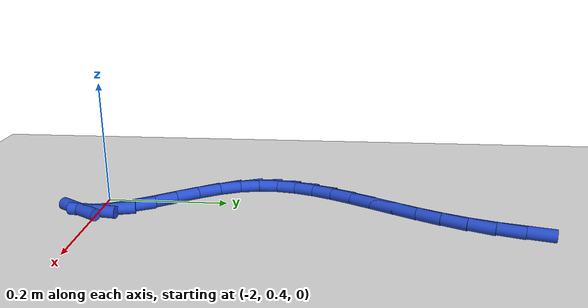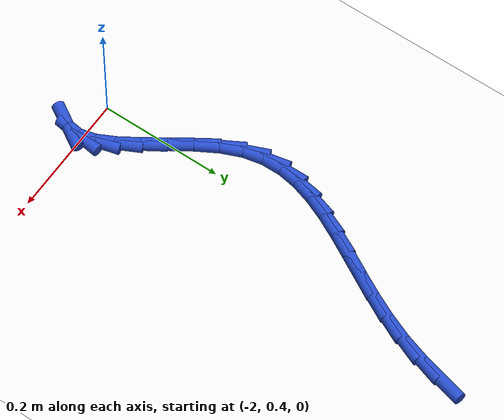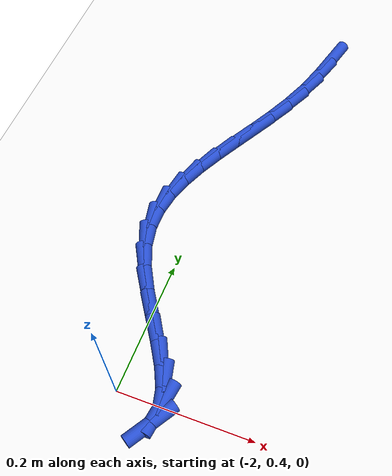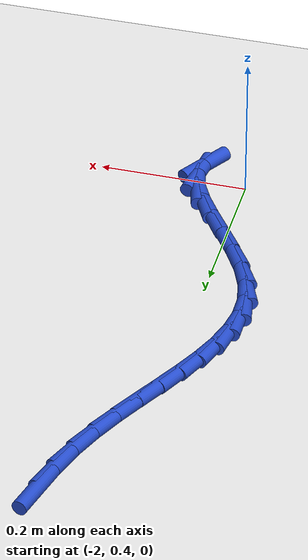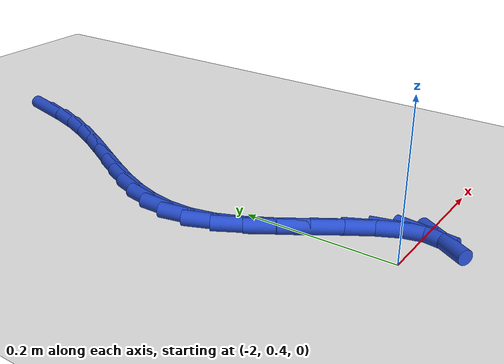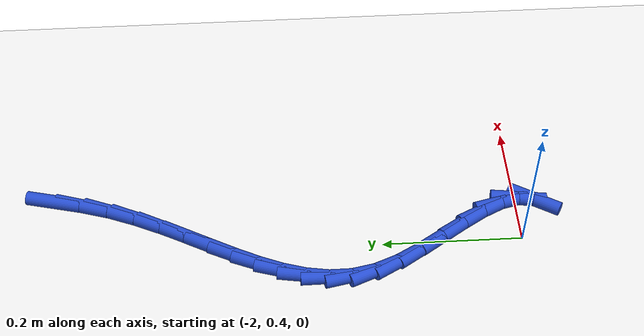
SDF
<sdf version="1.6">
 <world name="default">
  <model name="ground_plane">
   <static>1</static>
   <link name="link">
    <collision name="collision">
     <geometry><plane><normal>0 0 1</normal><size>100 100</size></plane></geometry>
     <surface><friction><ode><mu>100</mu><mu2>50</mu2></ode></friction></surface>
    </collision>
    <visual name="visual">
     <cast_shadows>0</cast_shadows>
     <geometry><plane><normal>0 0 1</normal><size>100 100</size></plane></geometry>
     <material>
      <script><uri>file://media/materials/scripts/gazebo.material</uri><name>Gazebo/WhiteGlow</name></script>
     </material>
    </visual>
   </link>
  </model>
  <model name="line">
   <link name="link_81">
    <pose>-1.900393486581101 1.0660492257197332 0.01 0 1.57 1.3218783087110892</pose>
    <collision name="collision">
     <geometry><cylinder><radius>0.01</radius><length>0.08</length></cylinder></geometry>
    </collision>
    <visual name="visual">
     <material>
      <script><name>Gazebo/Blue</name><uri>file://media/materials/scripts/gazebo.material</uri></script>
     </material>
     <geometry><cylinder><radius>0.01</radius><length>0.08</length></cylinder></geometry>
    </visual>
   </link>
   <link name="link_82">
    <pose>-1.910838925576385 1.024956142556302 0.01 0 1.57 1.2593751050893758</pose>
    <collision name="collision">
     <geometry><cylinder><radius>0.01</radius><length>0.08</length></cylinder></geometry>
    </collision>
    <visual name="visual">
     <material>
      <script><name>Gazebo/Blue</name><uri>file://media/materials/scripts/gazebo.material</uri></script>
     </material>
     <geometry><cylinder><radius>0.01</radius><length>0.08</length></cylinder></geometry>
    </visual>
   </link>
   <link name="link_83">
    <pose>-1.923765919452173 0.9847971375282583 0.01 0 1.57 1.1792049419602633</pose>
    <collision name="collision">
     <geometry><cylinder><radius>0.01</radius><length>0.08</length></cylinder></geometry>
    </collision>
    <visual name="visual">
     <material>
      <script><name>Gazebo/Blue</name><uri>file://media/materials/scripts/gazebo.material</uri></script>
     </material>
     <geometry><cylinder><radius>0.01</radius><length>0.08</length></cylinder></geometry>
    </visual>
   </link>
   <link name="link_84">
    <pose>-1.9395824567280096 0.9464926843374095 0.01 0 1.57 1.1173850934279785</pose>
    <collision name="collision">
     <geometry><cylinder><radius>0.01</radius><length>0.08</length></cylinder></geometry>
    </collision>
    <visual name="visual">
     <material>
      <script><name>Gazebo/Blue</name><uri>file://media/materials/scripts/gazebo.material</uri></script>
     </material>
     <geometry><cylinder><radius>0.01</radius><length>0.08</length></cylinder></geometry>
    </visual>
   </link>
   <link name="link_85">
    <pose>-1.9574265873750212 0.9098720051963848 0.01 0 1.57 1.0774778064119195</pose>
    <collision name="collision">
     <geometry><cylinder><radius>0.01</radius><length>0.08</length></cylinder></geometry>
    </collision>
    <visual name="visual">
     <material>
      <script><name>Gazebo/Blue</name><uri>file://media/materials/scripts/gazebo.material</uri></script>
     </material>
     <geometry><cylinder><radius>0.01</radius><length>0.08</length></cylinder></geometry>
    </visual>
   </link>
   <link name="link_86">
    <pose>-1.9763448197782505 0.8746856611162411 0.01 0 1.57 1.060352075614533</pose>
    <collision name="collision">
     <geometry><cylinder><radius>0.01</radius><length>0.08</length></cylinder></geometry>
    </collision>
    <visual name="visual">
     <material>
      <script><name>Gazebo/Blue</name><uri>file://media/materials/scripts/gazebo.material</uri></script>
     </material>
     <geometry><cylinder><radius>0.01</radius><length>0.08</length></cylinder></geometry>
    </visual>
   </link>
   <link name="link_87">
    <pose>-1.9953836623227366 0.8406842131080366 0.01 0 1.57 1.0674966071848522</pose>
    <collision name="collision">
     <geometry><cylinder><radius>0.01</radius><length>0.08</length></cylinder></geometry>
    </collision>
    <visual name="visual">
     <material>
      <script><name>Gazebo/Blue</name><uri>file://media/materials/scripts/gazebo.material</uri></script>
     </material>
     <geometry><cylinder><radius>0.01</radius><length>0.08</length></cylinder></geometry>
    </visual>
   </link>
   <link name="link_88">
    <pose>-2.0135896233935218 0.8076182221828299 0.01 0 1.57 1.101492141378941</pose>
    <collision name="collision">
     <geometry><cylinder><radius>0.01</radius><length>0.08</length></cylinder></geometry>
    </collision>
    <visual name="visual">
     <material>
      <script><name>Gazebo/Blue</name><uri>file://media/materials/scripts/gazebo.material</uri></script>
     </material>
     <geometry><cylinder><radius>0.01</radius><length>0.08</length></cylinder></geometry>
    </visual>
   </link>
   <link name="link_89">
    <pose>-2.0300092113756487 0.775238249351678 0.01 0 1.57 1.1661770519571342</pose>
    <collision name="collision">
     <geometry><cylinder><radius>0.01</radius><length>0.08</length></cylinder></geometry>
    </collision>
    <visual name="visual">
     <material>
      <script><name>Gazebo/Blue</name><uri>file://media/materials/scripts/gazebo.material</uri></script>
     </material>
     <geometry><cylinder><radius>0.01</radius><length>0.08</length></cylinder></geometry>
    </visual>
   </link>
   <link name="link_90">
    <pose>-2.043688934654158 0.7432948556256395 0.01 0 1.57 1.266118366930784</pose>
    <collision name="collision">
     <geometry><cylinder><radius>0.01</radius><length>0.08</length></cylinder></geometry>
    </collision>
    <visual name="visual">
     <material>
      <script><name>Gazebo/Blue</name><uri>file://media/materials/scripts/gazebo.material</uri></script>
     </material>
     <geometry><cylinder><radius>0.01</radius><length>0.08</length></cylinder></geometry>
    </visual>
   </link>
   <link name="link_91">
    <pose>-2.0536753016140907 0.7115386020157721 0.01 0 1.57 1.4045339645055368</pose>
    <collision name="collision">
     <geometry><cylinder><radius>0.01</radius><length>0.08</length></cylinder></geometry>
    </collision>
    <visual name="visual">
     <material>
      <script><name>Gazebo/Blue</name><uri>file://media/materials/scripts/gazebo.material</uri></script>
     </material>
     <geometry><cylinder><radius>0.01</radius><length>0.08</length></cylinder></geometry>
    </visual>
   </link>
   <link name="link_92">
    <pose>-2.0590148206404892 0.6797200495331343 0.01 0 1.57 -1.5626789151381304</pose>
    <collision name="collision">
     <geometry><cylinder><radius>0.01</radius><length>0.08</length></cylinder></geometry>
    </collision>
    <visual name="visual">
     <material>
      <script><name>Gazebo/Blue</name><uri>file://media/materials/scripts/gazebo.material</uri></script>
     </material>
     <geometry><cylinder><radius>0.01</radius><length>0.08</length></cylinder></geometry>
    </visual>
   </link>
   <link name="link_93">
    <pose>-2.0587540001183933 0.6475897591887835 0.01 0 1.57 -1.3652857450930833</pose>
    <collision name="collision">
     <geometry><cylinder><radius>0.01</radius><length>0.08</length></cylinder></geometry>
    </collision>
    <visual name="visual">
     <material>
      <script><name>Gazebo/Blue</name><uri>file://media/materials/scripts/gazebo.material</uri></script>
     </material>
     <geometry><cylinder><radius>0.01</radius><length>0.08</length></cylinder></geometry>
    </visual>
   </link>
   <link name="link_94">
    <pose>-2.0519393484328448 0.614898291993778 0.01 0 1.57 -1.175092285447107</pose>
    <collision name="collision">
     <geometry><cylinder><radius>0.01</radius><length>0.08</length></cylinder></geometry>
    </collision>
    <visual name="visual">
     <material>
      <script><name>Gazebo/Blue</name><uri>file://media/materials/scripts/gazebo.material</uri></script>
     </material>
     <geometry><cylinder><radius>0.01</radius><length>0.08</length></cylinder></geometry>
    </visual>
   </link>
   <link name="link_95">
    <pose>-2.037981253968023 0.5814848172712699 0.01 0 1.57 -1.0496214207186552</pose>
    <collision name="collision">
     <geometry><cylinder><radius>0.01</radius><length>0.08</length></cylinder></geometry>
    </collision>
    <visual name="visual">
     <material>
      <script><name>Gazebo/Blue</name><uri>file://media/materials/scripts/gazebo.material</uri></script>
     </material>
     <geometry><cylinder><radius>0.01</radius><length>0.08</length></cylinder></geometry>
    </visual>
   </link>
   <link name="link_96">
    <pose>-2.018616144277766 0.5477549174618606 0.01 0 1.57 -0.9860833980995647</pose>
    <collision name="collision">
     <geometry><cylinder><radius>0.01</radius><length>0.08</length></cylinder></geometry>
    </collision>
    <visual name="visual">
     <material>
      <script><name>Gazebo/Blue</name><uri>file://media/materials/scripts/gazebo.material</uri></script>
     </material>
     <geometry><cylinder><radius>0.01</radius><length>0.08</length></cylinder></geometry>
    </visual>
   </link>
   <link name="link_97">
    <pose>-1.996496070969169 0.5143371383513871 0.01 0 1.57 -0.9707467989995675</pose>
    <collision name="collision">
     <geometry><cylinder><radius>0.01</radius><length>0.08</length></cylinder></geometry>
    </collision>
    <visual name="visual">
     <material>
      <script><name>Gazebo/Blue</name><uri>file://media/materials/scripts/gazebo.material</uri></script>
     </material>
     <geometry><cylinder><radius>0.01</radius><length>0.08</length></cylinder></geometry>
    </visual>
   </link>
   <link name="link_98">
    <pose>-1.9742752883288524 0.4818605620995331 0.01 0 1.57 -1.0040763716793484</pose>
    <collision name="collision">
     <geometry><cylinder><radius>0.01</radius><length>0.08</length></cylinder></geometry>
    </collision>
    <visual name="visual">
     <material>
      <script><name>Gazebo/Blue</name><uri>file://media/materials/scripts/gazebo.material</uri></script>
     </material>
     <geometry><cylinder><radius>0.01</radius><length>0.08</length></cylinder></geometry>
    </visual>
   </link>
   <link name="link_99">
    <pose>-1.9546080506434393 0.45095427086598283 0.01 0 1.57 -1.1041997470712976</pose>
    <collision name="collision">
     <geometry><cylinder><radius>0.01</radius><length>0.08</length></cylinder></geometry>
    </collision>
    <visual name="visual">
     <material>
      <script><name>Gazebo/Blue</name><uri>file://media/materials/scripts/gazebo.material</uri></script>
     </material>
     <geometry><cylinder><radius>0.01</radius><length>0.08</length></cylinder></geometry>
    </visual>
   </link>
   <link name="link_100">
    <pose>-1.9401486121995515 0.42224734681042 0.01 0 1.57 -1.3211635936922108</pose>
    <collision name="collision">
     <geometry><cylinder><radius>0.01</radius><length>0.08</length></cylinder></geometry>
    </collision>
    <visual name="visual">
     <material>
      <script><name>Gazebo/Blue</name><uri>file://media/materials/scripts/gazebo.material</uri></script>
     </material>
     <geometry><cylinder><radius>0.01</radius><length>0.08</length></cylinder></geometry>
    </visual>
   </link>
   <link name="link_101">
    <pose>-1.933550848740114 0.3963687660289458 0.01 0 1.57 1.4339145344468494</pose>
    <collision name="collision">
     <geometry><cylinder><radius>0.01</radius><length>0.08</length></cylinder></geometry>
    </collision>
    <visual name="visual">
     <material>
      <script><name>Gazebo/Blue</name><uri>file://media/materials/scripts/gazebo.material</uri></script>
     </material>
     <geometry><cylinder><radius>0.01</radius><length>0.08</length></cylinder></geometry>
    </visual>
   </link>
   <link name="link_102">
    <pose>-1.9366700447664384 0.3737237485517861 0.01 0 1.57 1.016062376305988</pose>
    <collision name="collision">
     <geometry><cylinder><radius>0.01</radius><length>0.08</length></cylinder></geometry>
    </collision>
    <visual name="visual">
     <material>
      <script><name>Gazebo/Blue</name><uri>file://media/materials/scripts/gazebo.material</uri></script>
     </material>
     <geometry><cylinder><radius>0.01</radius><length>0.08</length></cylinder></geometry>
    </visual>
   </link>
  </model>
 </world>
</sdf>
